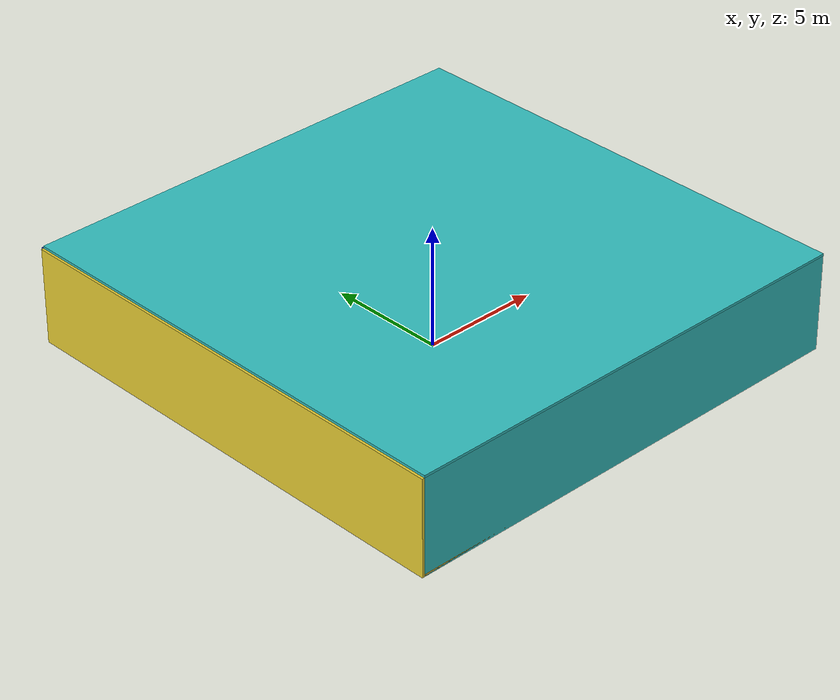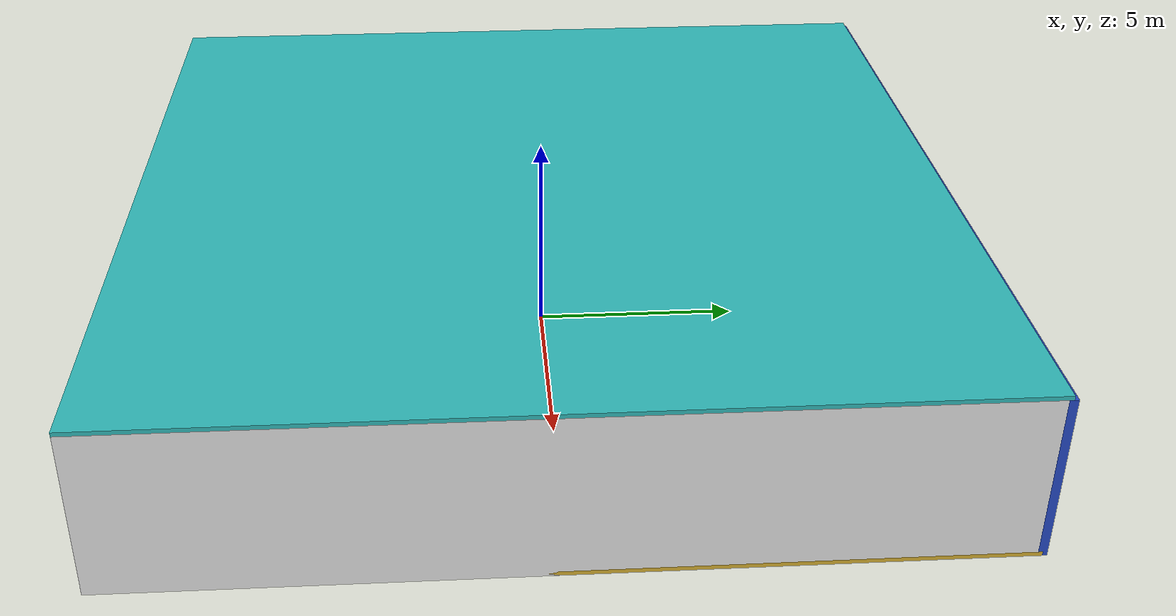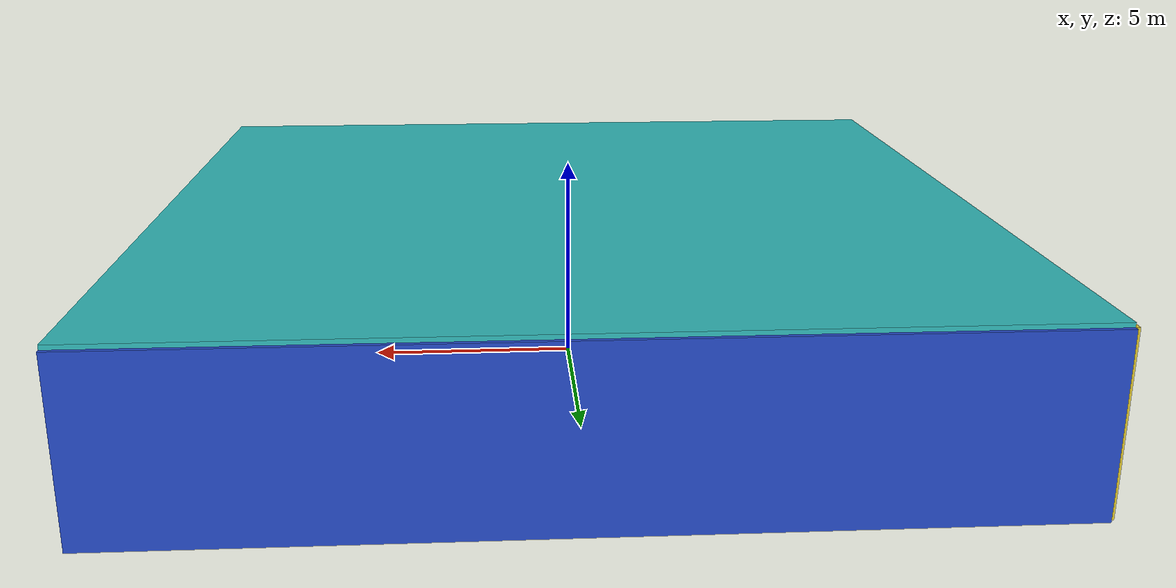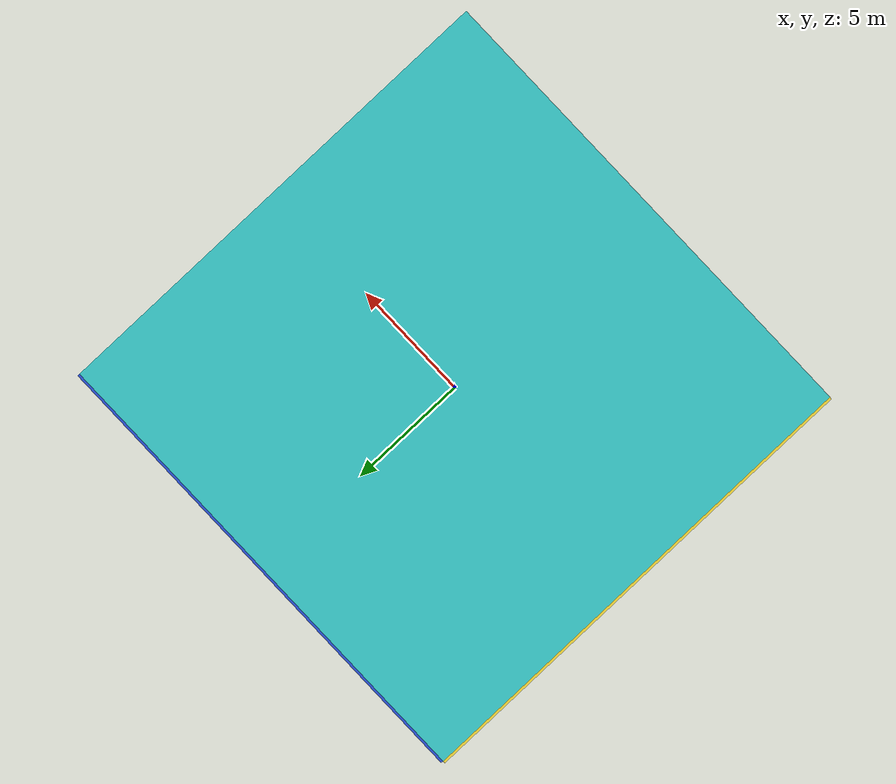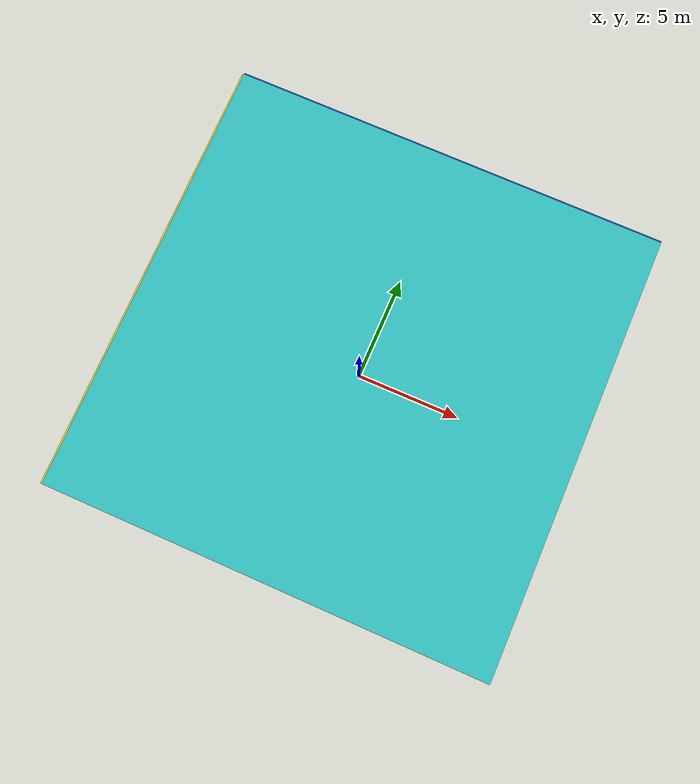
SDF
<sdf version="1.4">
 <world name="default">
  <physics type="ode">
   <max_step_size>0.001</max_step_size>
   <real_time_factor>1</real_time_factor>
   <real_time_update_rate>1000</real_time_update_rate>
   <gravity>0 0 -9.8</gravity>
  </physics>
  <scene><ambient>0.4 0.4 0.4 1</ambient><background>0.7 0.7 0.7 1</background><shadows>1</shadows></scene>
  <model name="Surrounding">
   <static>1</static>
   <link name="Ceiling">
    <collision name="Ceiling_Collision"><geometry><box><size>20 20 0.1</size></box></geometry></collision>
    <visual name="Ceiling_Visual">
     <geometry><box><size>20 20 0.1</size></box></geometry>
     <material>
      <script>
       <uri>file://media/materials/scripts/gazebo.material</uri>
       <name>Gazebo/TurquoiseGlowOutline</name>
      </script>
     </material>
    </visual>
    <pose>0 0 4.05 0 0 0</pose>
   </link>
   <link name="Wall_South">
    <collision name="Wall_South_Collision">
     <geometry><box><size>20 0 4</size></box></geometry>
     <pose>0 0 2 0 -0 0</pose>
    </collision>
    <visual name="Wall_South_Visual">
     <pose>0 0 2 0 -0 0</pose>
     <geometry><box><size>20 0 4</size></box></geometry>
     <material>
      <script><uri>file://media/materials/scripts/gazebo.material</uri><name>Gazebo/Turquoise</name></script>
     </material>
    </visual>
    <velocity_decay><linear>0</linear><angular>0</angular></velocity_decay>
    <pose>0 -10 0 0 -0 0</pose>
   </link>
   <link name="Wall_East">
    <collision name="Wall_21_Collision">
     <geometry><box><size>20 0 4</size></box></geometry>
     <pose>0 0 2 0 -0 0</pose>
    </collision>
    <visual name="Wall_21_Visual">
     <pose>0 0 2 0 -0 0</pose>
     <geometry><box><size>20 0 4</size></box></geometry>
     <material>
      <script><uri>file://media/materials/scripts/gazebo.material</uri><name>Gazebo/White</name></script>
     </material>
    </visual>
    <velocity_decay><linear>0</linear><angular>0</angular></velocity_decay>
    <pose>10 0 0 0 -0 1.5708</pose>
   </link>
   <link name="Wall_North">
    <collision name="Wall_22_Collision">
     <geometry><box><size>20 0.2 4</size></box></geometry>
     <pose>0 0 2 0 -0 0</pose>
    </collision>
    <visual name="Wall_22_Visual">
     <pose>0 0 2 0 -0 0</pose>
     <geometry><box><size>20 0.2 4</size></box></geometry>
     <material>
      <script><uri>file://media/materials/scripts/gazebo.material</uri><name>Gazebo/Blue</name></script>
     </material>
    </visual>
    <velocity_decay><linear>0</linear><angular>0</angular></velocity_decay>
    <pose>0 10 0 0 -0 0</pose>
   </link>
   <link name="Wall_West">
    <collision name="Wall_23_Collision">
     <geometry><box><size>20 0.2 4</size></box></geometry>
     <pose>0 0 2 0 -0 0</pose>
    </collision>
    <visual name="Wall_23_Visual">
     <pose>0 0 2 0 -0 0</pose>
     <geometry><box><size>20 0.2 4</size></box></geometry>
     <material>
      <script><uri>file://media/materials/scripts/gazebo.material</uri><name>Gazebo/ZincYellow</name></script>
     </material>
    </visual>
    <velocity_decay><linear>0</linear><angular>0</angular></velocity_decay>
    <pose>-10 0 0 0 0 -1.5708</pose>
   </link>
   <link name="Ground_link">
    <collision name="collision">
     <pose>0 0 .05 0 -0 0</pose>
     <geometry><box><size>20 20 0.1</size></box></geometry>
    </collision>
    <visual name="visual">
     <pose>0 0 .05 0 -0 0</pose>
     <geometry><box><size>20 20 0.1</size></box></geometry>
     <material>
      <script><uri>file://media/materials/scripts/gazebo.material</uri><name>Gazebo/Gold</name></script>
     </material>
    </visual>
   </link>
   <static>1</static>
  </model>
  <spherical_coordinates>
   <surface_model>EARTH_WGS84</surface_model>
   <latitude_deg>0</latitude_deg>
   <longitude_deg>0</longitude_deg>
   <elevation>0</elevation>
   <heading_deg>0</heading_deg>
  </spherical_coordinates>
  <light name="lightball_0" type="diffuse">
   <diffuse>0.8 0.8 0.8 1</diffuse>
   <specular>0.2 0.2 0.2 1</specular>
   <attenuation>
    <range>100</range>
    <constant>0.7</constant>
    <linear>0.01</linear>
    <quadratic>0.001</quadratic>
   </attenuation>
   <direction>-0.5 0.1 -0.9</direction>
   <pose>-3.20372005325 -0.208849148357 1.99815288403 0 0 0</pose>
  </light>
  <light name="lightball_1" type="diffuse">
   <diffuse>0.8 0.8 0.8 1</diffuse>
   <specular>0.2 0.2 0.2 1</specular>
   <attenuation>
    <range>100</range>
    <constant>0.7</constant>
    <linear>0.01</linear>
    <quadratic>0.001</quadratic>
   </attenuation>
   <direction>-0.5 0.1 -0.9</direction>
   <pose>0.869152013632 9.87026273749 0.782630078653 0 0 0</pose>
  </light>
  <light name="lightball_2" type="diffuse">
   <diffuse>0.8 0.8 0.8 1</diffuse>
   <specular>0.2 0.2 0.2 1</specular>
   <attenuation>
    <range>100</range>
    <constant>0.7</constant>
    <linear>0.01</linear>
    <quadratic>0.001</quadratic>
   </attenuation>
   <direction>-0.5 0.1 -0.9</direction>
   <pose>-9.37531029616 3.23277716496 2.98062053564 0 0 0</pose>
  </light>
  <light name="lightball_3" type="diffuse">
   <diffuse>0.8 0.8 0.8 1</diffuse>
   <specular>0.2 0.2 0.2 1</specular>
   <attenuation>
    <range>100</range>
    <constant>0.7</constant>
    <linear>0.01</linear>
    <quadratic>0.001</quadratic>
   </attenuation>
   <direction>-0.5 0.1 -0.9</direction>
   <pose>-7.5285391191 2.68136101929 1.44386546978 0 0 0</pose>
  </light>
  <light name="lightball_4" type="diffuse">
   <diffuse>0.8 0.8 0.8 1</diffuse>
   <specular>0.2 0.2 0.2 1</specular>
   <attenuation>
    <range>100</range>
    <constant>0.7</constant>
    <linear>0.01</linear>
    <quadratic>0.001</quadratic>
   </attenuation>
   <direction>-0.5 0.1 -0.9</direction>
   <pose>-2.77387804073 -7.05000599574 2.28672775902 0 0 0</pose>
  </light>
  <light name="lightball_5" type="diffuse">
   <diffuse>0.8 0.8 0.8 1</diffuse>
   <specular>0.2 0.2 0.2 1</specular>
   <attenuation>
    <range>100</range>
    <constant>0.7</constant>
    <linear>0.01</linear>
    <quadratic>0.001</quadratic>
   </attenuation>
   <direction>-0.5 0.1 -0.9</direction>
   <pose>8.56395962445 0.589053609773 1.70707510105 0 0 0</pose>
  </light>
  <light name="lightball_6" type="diffuse">
   <diffuse>0.8 0.8 0.8 1</diffuse>
   <specular>0.2 0.2 0.2 1</specular>
   <attenuation>
    <range>100</range>
    <constant>0.7</constant>
    <linear>0.01</linear>
    <quadratic>0.001</quadratic>
   </attenuation>
   <direction>-0.5 0.1 -0.9</direction>
   <pose>6.80998348011 4.13434076594 1.4694062058 0 0 0</pose>
  </light>
  <light name="lightball_7" type="diffuse">
   <diffuse>0.8 0.8 0.8 1</diffuse>
   <specular>0.2 0.2 0.2 1</specular>
   <attenuation>
    <range>100</range>
    <constant>0.7</constant>
    <linear>0.01</linear>
    <quadratic>0.001</quadratic>
   </attenuation>
   <direction>-0.5 0.1 -0.9</direction>
   <pose>2.05280241233 4.74840710808 3.22394434295 0 0 0</pose>
  </light>
  <include><uri>model://cabinet</uri><pose>-8.25153690026 6.66600458899 0 0 0 0.146207823032</pose></include>
  <include>
   <uri>model://textured_shapes</uri>
   <pose>0.416111544115 7.07118020653 0 0 0 2.17128492039</pose>
  </include>
  <include>
   <uri>model://construction_cone</uri>
   <pose>8.5341454271 1.73592001389 0 0 0 2.81298631747</pose>
  </include>
 </world>
</sdf>

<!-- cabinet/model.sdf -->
<sdf version="1.5">
  <model name="cabinet">
    <static>true</static>
    <link name="cabinet_bottom_plate">
      <inertial>
        <pose>0 0 -1 0 0 0</pose>
        <inertia>
          <ixx>2.050000</ixx>
          <ixy>0</ixy>
          <ixz>0</ixz>
          <iyy>2.050000</iyy>
          <iyz>0</iyz>
          <izz>2.050000</izz>
        </inertia>
        <mass>25.000000</mass>
      </inertial>
      <collision name="cabinet_bottom_plate_geom">
        <pose>0 0 0.010000 0 0 0</pose>
        <geometry>
          <box>
            <size>0.450000 0.450000 0.020000</size>
          </box>
        </geometry>
      </collision>
      <visual name="cabinet_bottom_plate_geom_visual">
        <pose>0 0 0.010000 0 0 0</pose>
        <geometry>
          <box>
            <size>0.450000 0.450000 0.020000</size>
          </box>
        </geometry>
        <material>
          <script>
            <uri>model://media/materials/scripts/gazebo.material</uri>
            <name>Gazebo/Wood</name>
          </script>
        </material>
      </visual>
      <collision name="cabinet_bottom_plate_geom_cabinet_back_plate">
        <pose>0.235000 0 0.510000 0 0 0</pose>
        <geometry>
          <box>
            <size>0.020000 0.450000 1.020000</size>
          </box>
        </geometry>
      </collision>
      <visual name="cabinet_bottom_plate_geom_cabinet_back_plate_visual">
        <pose>0.235000 0 0.510000 0 0 0</pose>
        <geometry>
          <box>
            <size>0.020000 0.450000 1.020000</size>
          </box>
        </geometry>
        <material>
          <script>
            <uri>model://media/materials/scripts/gazebo.material</uri>
            <name>Gazebo/Wood</name>
          </script>
        </material>
      </visual>
      <collision name="cabinet_bottom_plate_geom_cabinet_left_plate">
        <pose>0 0.235000 0.510000 0 0 0</pose>
        <geometry>
          <box>
            <size>0.450000 0.020000 1.020000</size>
          </box>
        </geometry>
      </collision>
      <visual name="cabinet_bottom_plate_geom_cabinet_left_plate_visual">
        <pose>0 0.235000 0.510000 0 0 0</pose>
        <geometry>
          <box>
            <size>0.450000 0.020000 1.020000</size>
          </box>
        </geometry>
        <material>
          <script>
            <uri>model://media/materials/scripts/gazebo.material</uri>
            <name>Gazebo/Wood</name>
          </script>
        </material>
      </visual>
      <collision name="cabinet_bottom_plate_geom_cabinet_middle_plate">
        <pose>0 0 0.510000 0 0 0</pose>
        <geometry>
          <box>
            <size>0.450000 0.450000 0.020000</size>
          </box>
        </geometry>
      </collision>
      <visual name="cabinet_bottom_plate_geom_cabinet_middle_plate_visual">
        <pose>0 0 0.510000 0 0 0</pose>
        <geometry>
          <box>
            <size>0.450000 0.450000 0.020000</size>
          </box>
        </geometry>
        <material>
          <script>
            <uri>model://media/materials/scripts/gazebo.material</uri>
            <name>Gazebo/Wood</name>
          </script>
        </material>
      </visual>
      <collision name="cabinet_bottom_plate_geom_cabinet_right_plate">
        <pose>0 -0.235000 0.510000 0 0 0</pose>
        <geometry>
          <box>
            <size>0.450000 0.020000 1.020000</size>
          </box>
        </geometry>
      </collision>
      <visual name="cabinet_bottom_plate_geom_cabinet_right_plate_visual">
        <pose>0 -0.235000 0.510000 0 0 0</pose>
        <geometry>
          <box>
            <size>0.450000 0.020000 1.020000</size>
          </box>
        </geometry>
        <material>
          <script>
            <uri>model://media/materials/scripts/gazebo.material</uri>
            <name>Gazebo/Wood</name>
          </script>
        </material>
      </visual>
      <collision name="cabinet_bottom_plate_geom_cabinet_top_plate">
        <pose>0 0 1.010000 0 0 0</pose>
        <geometry>
          <box>
            <size>0.450000 0.450000 0.020000</size>
          </box>
        </geometry>
      </collision>
      <visual name="cabinet_bottom_plate_geom_cabinet_top_plate_visual">
        <pose>0 0 1.010000 0 0 0</pose>
        <geometry>
          <box>
            <size>0.450000 0.450000 0.020000</size>
          </box>
        </geometry>
        <material>
          <script>
            <uri>model://media/materials/scripts/gazebo.material</uri>
            <name>Gazebo/Wood</name>
          </script>
        </material>
      </visual>
    </link>
  </model>
</sdf>

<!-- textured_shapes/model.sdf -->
<sdf version="1.6">
  <model name="textured_shapes">
    <pose>0 0 0.5 0 0 0</pose>
    <link name="box">
      <pose>0 -1.5 0 0 0 0</pose>
      <collision name="collision">
        <geometry>
          <box>
            <size>1 1 1</size>
          </box>
        </geometry>
      </collision>
      <visual name="visual">
        <geometry>
          <box>
            <size>1 1 1</size>
          </box>
        </geometry>
        <material>
          <script>
            <uri>model://../model_source/models/textured_shapes/materials/scripts</uri>
            <uri>model://../model_source/models/textured_shapes/materials/textures</uri>
            <name>TexturedShape/Squares</name>
          </script>
        </material>
      </visual>
    </link>
    <link name="sphere">
      <collision name="collision">
        <geometry>
          <sphere>
            <radius>0.5</radius>
          </sphere>
        </geometry>
      </collision>
      <visual name="visual">
        <geometry>
          <sphere>
            <radius>0.5</radius>
          </sphere>
        </geometry>
        <material>
          <script>
            <uri>model://../model_source/models/textured_shapes/materials/scripts</uri>
            <uri>model://../model_source/models/textured_shapes/materials/textures</uri>
            <name>TexturedShape/Squares</name>
          </script>
        </material>
      </visual>
    </link>
    <link name="cylinder">
      <pose>0 1.5 0 0 0 0</pose>
      <collision name="collision">
        <geometry>
          <cylinder>
            <radius>0.5</radius>
            <length>1</length>
          </cylinder>
        </geometry>
      </collision>
      <visual name="visual">
        <geometry>
          <cylinder>
            <radius>0.5</radius>
            <length>1</length>
          </cylinder>
        </geometry>
        <material>
          <script>
            <uri>model://../model_source/models/textured_shapes/materials/scripts</uri>
            <uri>model://../model_source/models/textured_shapes/materials/textures</uri>
            <name>TexturedShape/Squares</name>
          </script>
        </material>
      </visual>
    </link>
  </model>
</sdf>

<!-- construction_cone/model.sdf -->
<sdf version="1.5">
  <model name="Construction Cone">
    <link name="link">
      <collision name="collision">
        <geometry>
          <mesh>
            <scale>10 10 10</scale>
            <uri>file://isr-testbed/construction_cone/meshes/construction_cone.dae</uri>
          </mesh>
        </geometry>
      </collision>
      <visual name="visual">
        <geometry>
          <mesh>
            <scale>10 10 10</scale>
            <uri>file://isr-testbed/construction_cone/meshes/construction_cone.dae</uri>
          </mesh>
        </geometry>
      </visual>
    </link>
  </model>
</sdf>
